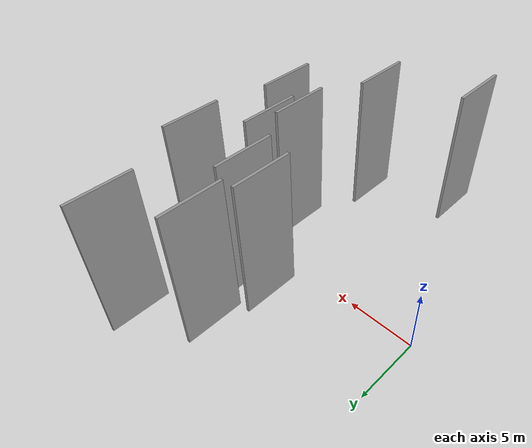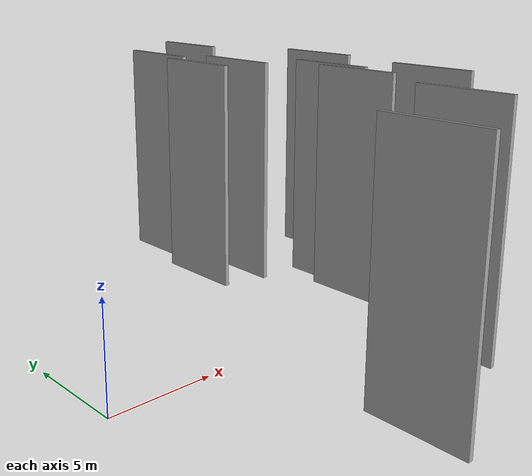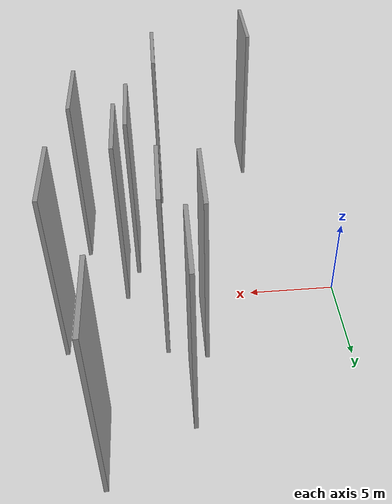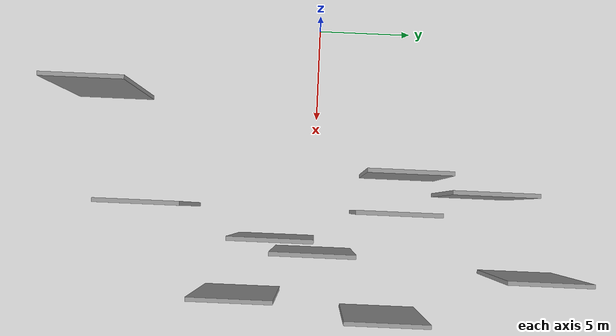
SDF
<sdf version="1.6">
 <world name="default">
  <scene>
   <sky><clouds><speed>12</speed></clouds></sky>
   <ambient>0.4 0.4 0.4 1</ambient>
   <background>0.7 0.7 0.7 1</background>
   <shadows>1</shadows>
  </scene>
  <gravity>0 0 -9.8066</gravity>
  <magnetic_field>6e-06 2.3e-05 -4.2e-05</magnetic_field>
  <physics default="0" name="default_physics" type="ode">
   <ode>
    <solver>
     <type>quick</type>
     <iters>10</iters>
     <sor>1.0</sor>
     <use_dynamic_moi_rescaling>0</use_dynamic_moi_rescaling>
    </solver>
    <constraints>
     <cfm>0</cfm>
     <erp>0.2</erp>
     <contact_max_correcting_vel>100</contact_max_correcting_vel>
     <contact_surface_layer>0.001</contact_surface_layer>
    </constraints>
   </ode>
   <max_step_size>0.004</max_step_size>
   <real_time_factor>1</real_time_factor>
   <real_time_update_rate>250</real_time_update_rate>
  </physics>
  <light name="sun" type="directional">
   <pose>0 0 10 0 0 0</pose>
   <diffuse>0.8 0.8 0.8 1</diffuse>
   <specular>0.2 0.2 0.2 1</specular>
   <attenuation>
    <range>1000</range>
    <constant>0.9</constant>
    <linear>0.01</linear>
    <quadratic>0.001</quadratic>
   </attenuation>
   <direction>-0.5 0.1 -0.9</direction>
  </light>
  <model name="grey_wall_1">
   <static>1</static>
   <pose>14.3837 -3.6035 2.5 0.000000 0.000000 1.570796</pose>
   <link name="link">
    <pose>0 0 5.00 0 0 0</pose>
    <collision name="collision"><geometry><box><size>4.00 0.2 10.00</size></box></geometry></collision>
    <visual name="visual">
     <cast_shadows>0</cast_shadows>
     <geometry><box><size>4.00 0.2 10.00</size></box></geometry>
     <material>
      <script>
       <uri>model://grey_wall/materials/scripts</uri>
       <uri>model://grey_wall/materials/textures</uri>
       <name>vrc/grey_wall</name>
      </script>
     </material>
    </visual>
   </link>
  </model>
  <model name="grey_wall_2">
   <static>1</static>
   <pose>13.0172 11.0135 2.5 0.000000 0.000000 1.570796</pose>
   <link name="link">
    <pose>0 0 5.00 0 0 0</pose>
    <collision name="collision"><geometry><box><size>4.00 0.2 10.00</size></box></geometry></collision>
    <visual name="visual">
     <cast_shadows>0</cast_shadows>
     <geometry><box><size>4.00 0.2 10.00</size></box></geometry>
     <material>
      <script>
       <uri>model://grey_wall/materials/scripts</uri>
       <uri>model://grey_wall/materials/textures</uri>
       <name>vrc/grey_wall</name>
      </script>
     </material>
    </visual>
   </link>
  </model>
  <model name="grey_wall_3">
   <static>1</static>
   <pose>10.1038 3.9880 2.5 0.000000 0.000000 1.570796</pose>
   <link name="link">
    <pose>0 0 5.00 0 0 0</pose>
    <collision name="collision"><geometry><box><size>4.00 0.2 10.00</size></box></geometry></collision>
    <visual name="visual">
     <cast_shadows>0</cast_shadows>
     <geometry><box><size>4.00 0.2 10.00</size></box></geometry>
     <material>
      <script>
       <uri>model://grey_wall/materials/scripts</uri>
       <uri>model://grey_wall/materials/textures</uri>
       <name>vrc/grey_wall</name>
      </script>
     </material>
    </visual>
   </link>
  </model>
  <model name="grey_wall_4">
   <static>1</static>
   <pose>9.0125 8.3880 2.5 0.000000 0.000000 1.570796</pose>
   <link name="link">
    <pose>0 0 5.00 0 0 0</pose>
    <collision name="collision"><geometry><box><size>4.00 0.2 10.00</size></box></geometry></collision>
    <visual name="visual">
     <cast_shadows>0</cast_shadows>
     <geometry><box><size>4.00 0.2 10.00</size></box></geometry>
     <material>
      <script>
       <uri>model://grey_wall/materials/scripts</uri>
       <uri>model://grey_wall/materials/textures</uri>
       <name>vrc/grey_wall</name>
      </script>
     </material>
    </visual>
   </link>
  </model>
  <model name="grey_wall_5">
   <static>1</static>
   <pose>12.1593 0.1022 2.5 0.000000 0.000000 1.570796</pose>
   <link name="link">
    <pose>0 0 5.00 0 0 0</pose>
    <collision name="collision"><geometry><box><size>4.00 0.2 10.00</size></box></geometry></collision>
    <visual name="visual">
     <cast_shadows>0</cast_shadows>
     <geometry><box><size>4.00 0.2 10.00</size></box></geometry>
     <material>
      <script>
       <uri>model://grey_wall/materials/scripts</uri>
       <uri>model://grey_wall/materials/textures</uri>
       <name>vrc/grey_wall</name>
      </script>
     </material>
    </visual>
   </link>
  </model>
  <model name="grey_wall_6">
   <static>1</static>
   <pose>8.1592 4.4460 2.5 0.000000 0.000000 1.570796</pose>
   <link name="link">
    <pose>0 0 5.00 0 0 0</pose>
    <collision name="collision"><geometry><box><size>4.00 0.2 10.00</size></box></geometry></collision>
    <visual name="visual">
     <cast_shadows>0</cast_shadows>
     <geometry><box><size>4.00 0.2 10.00</size></box></geometry>
     <material>
      <script>
       <uri>model://grey_wall/materials/scripts</uri>
       <uri>model://grey_wall/materials/textures</uri>
       <name>vrc/grey_wall</name>
      </script>
     </material>
    </visual>
   </link>
  </model>
  <model name="grey_wall_7">
   <static>1</static>
   <pose>4.3889 -10.8565 2.5 0.000000 0.000000 1.570796</pose>
   <link name="link">
    <pose>0 0 5.00 0 0 0</pose>
    <collision name="collision"><geometry><box><size>4.00 0.2 10.00</size></box></geometry></collision>
    <visual name="visual">
     <cast_shadows>0</cast_shadows>
     <geometry><box><size>4.00 0.2 10.00</size></box></geometry>
     <material>
      <script>
       <uri>model://grey_wall/materials/scripts</uri>
       <uri>model://grey_wall/materials/textures</uri>
       <name>vrc/grey_wall</name>
      </script>
     </material>
    </visual>
   </link>
  </model>
  <model name="grey_wall_8">
   <static>1</static>
   <pose>15.1707 3.6448 2.5 0.000000 0.000000 1.570796</pose>
   <link name="link">
    <pose>0 0 5.00 0 0 0</pose>
    <collision name="collision"><geometry><box><size>4.00 0.2 10.00</size></box></geometry></collision>
    <visual name="visual">
     <cast_shadows>0</cast_shadows>
     <geometry><box><size>4.00 0.2 10.00</size></box></geometry>
     <material>
      <script>
       <uri>model://grey_wall/materials/scripts</uri>
       <uri>model://grey_wall/materials/textures</uri>
       <name>vrc/grey_wall</name>
      </script>
     </material>
    </visual>
   </link>
  </model>
  <model name="grey_wall_9">
   <static>1</static>
   <pose>11.5464 -1.8733 2.5 0.000000 0.000000 1.570796</pose>
   <link name="link">
    <pose>0 0 5.00 0 0 0</pose>
    <collision name="collision"><geometry><box><size>4.00 0.2 10.00</size></box></geometry></collision>
    <visual name="visual">
     <cast_shadows>0</cast_shadows>
     <geometry><box><size>4.00 0.2 10.00</size></box></geometry>
     <material>
      <script>
       <uri>model://grey_wall/materials/scripts</uri>
       <uri>model://grey_wall/materials/textures</uri>
       <name>vrc/grey_wall</name>
      </script>
     </material>
    </visual>
   </link>
  </model>
  <model name="grey_wall_10">
   <static>1</static>
   <pose>10.0519 -8.0606 2.5 0.000000 0.000000 1.570796</pose>
   <link name="link">
    <pose>0 0 5.00 0 0 0</pose>
    <collision name="collision"><geometry><box><size>4.00 0.2 10.00</size></box></geometry></collision>
    <visual name="visual">
     <cast_shadows>0</cast_shadows>
     <geometry><box><size>4.00 0.2 10.00</size></box></geometry>
     <material>
      <script>
       <uri>model://grey_wall/materials/scripts</uri>
       <uri>model://grey_wall/materials/textures</uri>
       <name>vrc/grey_wall</name>
      </script>
     </material>
    </visual>
   </link>
  </model>
 </world>
</sdf>
